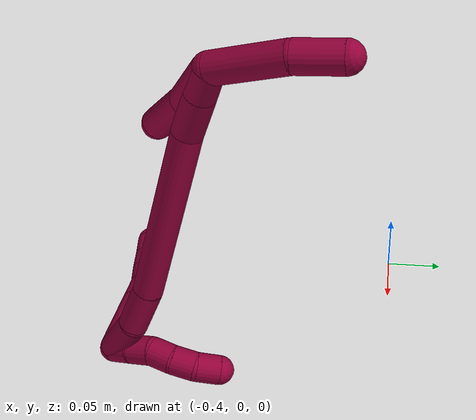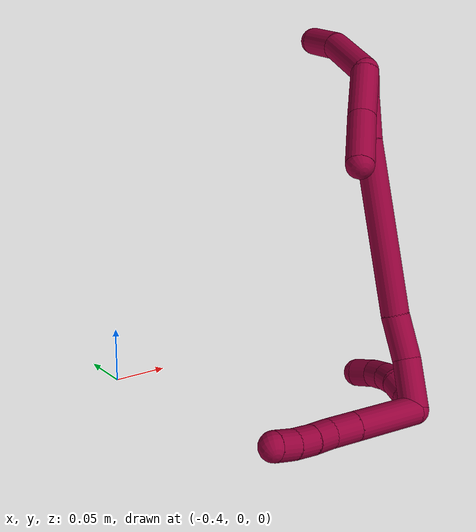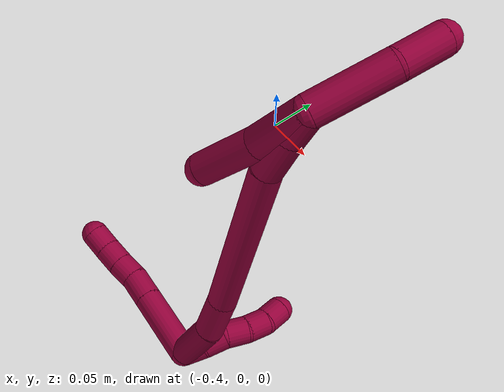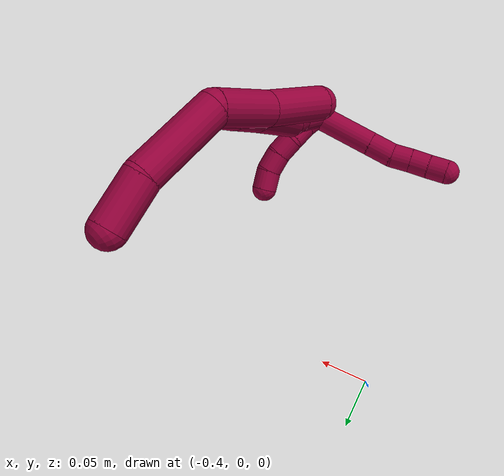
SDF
<sdf version="1.7">
 <world name="default">
  <model name="8">
   <static>0</static>
   <link name="8">
    <collision name="collision-cylinder-e_1_2_8">
     <pose>-0.025145 0.017129 0.009066 -1.08399 -0.914152 0.575828</pose>
     <geometry><cylinder><radius>0.0125</radius><length>0.063493</length></cylinder></geometry>
     <surface>
      <friction><ode><mu>1.16</mu><mu2>1.16</mu2><slip1>0</slip1><slip2>0</slip2></ode></friction>
      <contact><ode><kp>1e+06</kp><kd>1</kd><max_vel>0</max_vel><min_depth>0.001</min_depth></ode></contact>
     </surface>
    </collision>
    <visual name="visual-cylinder-e_1_2_8">
     <pose>-0.025145 0.017129 0.009066 -1.08399 -0.914152 0.575828</pose>
     <geometry><cylinder><radius>0.0125</radius><length>0.063493</length></cylinder></geometry>
     <material><ambient>0.584314 0 0.227451 1</ambient></material>
    </visual>
    <collision name="collision-cylinder-e_2_8_9">
     <pose>-0.060611 0.041288 0.021854 -1.08397 -0.914175 0.575827</pose>
     <geometry><cylinder><radius>0.0125</radius><length>0.026061</length></cylinder></geometry>
     <surface>
      <friction><ode><mu>1.16</mu><mu2>1.16</mu2><slip1>0</slip1><slip2>0</slip2></ode></friction>
      <contact><ode><kp>1e+06</kp><kd>1</kd><max_vel>0</max_vel><min_depth>0.001</min_depth></ode></contact>
     </surface>
    </collision>
    <visual name="visual-cylinder-e_2_8_9">
     <pose>-0.060611 0.041288 0.021854 -1.08397 -0.914175 0.575827</pose>
     <geometry><cylinder><radius>0.0125</radius><length>0.026061</length></cylinder></geometry>
     <material><ambient>0.584314 0 0.227451 1</ambient></material>
    </visual>
    <collision name="collision-cylinder-e_3_9_10">
     <pose>-0.077574 0.054474 0.029921 -0.956049 -0.722497 0.386619</pose>
     <geometry><cylinder><radius>0.0125</radius><length>0.020088</length></cylinder></geometry>
     <surface>
      <friction><ode><mu>1.16</mu><mu2>1.16</mu2><slip1>0</slip1><slip2>0</slip2></ode></friction>
      <contact><ode><kp>1e+06</kp><kd>1</kd><max_vel>0</max_vel><min_depth>0.001</min_depth></ode></contact>
     </surface>
    </collision>
    <visual name="visual-cylinder-e_3_9_10">
     <pose>-0.077574 0.054474 0.029921 -0.956049 -0.722497 0.386619</pose>
     <geometry><cylinder><radius>0.0125</radius><length>0.020088</length></cylinder></geometry>
     <material><ambient>0.584314 0 0.227451 1</ambient></material>
    </visual>
    <collision name="collision-cylinder-e_4_10_11">
     <pose>-0.091009 0.067097 0.038003 -1.047 -0.738006 0.43924</pose>
     <geometry><cylinder><radius>0.0125</radius><length>0.020195</length></cylinder></geometry>
     <surface>
      <friction><ode><mu>1.16</mu><mu2>1.16</mu2><slip1>0</slip1><slip2>0</slip2></ode></friction>
      <contact><ode><kp>1e+06</kp><kd>1</kd><max_vel>0</max_vel><min_depth>0.001</min_depth></ode></contact>
     </surface>
    </collision>
    <visual name="visual-cylinder-e_4_10_11">
     <pose>-0.091009 0.067097 0.038003 -1.047 -0.738006 0.43924</pose>
     <geometry><cylinder><radius>0.0125</radius><length>0.020195</length></cylinder></geometry>
     <material><ambient>0.584314 0 0.227451 1</ambient></material>
    </visual>
    <collision name="collision-cylinder-e_5_11_6">
     <pose>-0.103946 0.080873 0.044981 -1.15323 -0.655245 0.435067</pose>
     <geometry><cylinder><radius>0.0125</radius><length>0.020162</length></cylinder></geometry>
     <surface>
      <friction><ode><mu>1.16</mu><mu2>1.16</mu2><slip1>0</slip1><slip2>0</slip2></ode></friction>
      <contact><ode><kp>1e+06</kp><kd>1</kd><max_vel>0</max_vel><min_depth>0.001</min_depth></ode></contact>
     </surface>
    </collision>
    <visual name="visual-cylinder-e_5_11_6">
     <pose>-0.103946 0.080873 0.044981 -1.15323 -0.655245 0.435067</pose>
     <geometry><cylinder><radius>0.0125</radius><length>0.020162</length></cylinder></geometry>
     <material><ambient>0.584314 0 0.227451 1</ambient></material>
    </visual>
    <collision name="collision-cylinder-e_1_2_12">
     <pose>-0.00025 -0.000641 -0.009976 3.07739 -0.025003 -0.74254</pose>
     <geometry><cylinder><radius>0.0125</radius><length>0.02</length></cylinder></geometry>
     <surface>
      <friction><ode><mu>1.16</mu><mu2>1.16</mu2><slip1>0</slip1><slip2>0</slip2></ode></friction>
      <contact><ode><kp>1e+06</kp><kd>1</kd><max_vel>0</max_vel><min_depth>0.001</min_depth></ode></contact>
     </surface>
    </collision>
    <visual name="visual-cylinder-e_1_2_12">
     <pose>-0.00025 -0.000641 -0.009976 3.07739 -0.025003 -0.74254</pose>
     <geometry><cylinder><radius>0.0125</radius><length>0.02</length></cylinder></geometry>
     <material><ambient>0.584314 0 0.227451 1</ambient></material>
    </visual>
    <collision name="collision-cylinder-e_2_12_13">
     <pose>-0.002187 -0.002139 -0.029772 3.05459 -0.169527 -2.19472</pose>
     <geometry><cylinder><radius>0.0125</radius><length>0.02</length></cylinder></geometry>
     <surface>
      <friction><ode><mu>1.16</mu><mu2>1.16</mu2><slip1>0</slip1><slip2>0</slip2></ode></friction>
      <contact><ode><kp>1e+06</kp><kd>1</kd><max_vel>0</max_vel><min_depth>0.001</min_depth></ode></contact>
     </surface>
    </collision>
    <visual name="visual-cylinder-e_2_12_13">
     <pose>-0.002187 -0.002139 -0.029772 3.05459 -0.169527 -2.19472</pose>
     <geometry><cylinder><radius>0.0125</radius><length>0.02</length></cylinder></geometry>
     <material><ambient>0.584314 0 0.227451 1</ambient></material>
    </visual>
    <collision name="collision-cylinder-e_3_13_14">
     <pose>-0.006522 -0.006863 -0.048425 2.72894 -0.26798 -1.14433</pose>
     <geometry><cylinder><radius>0.0125</radius><length>0.02</length></cylinder></geometry>
     <surface>
      <friction><ode><mu>1.16</mu><mu2>1.16</mu2><slip1>0</slip1><slip2>0</slip2></ode></friction>
      <contact><ode><kp>1e+06</kp><kd>1</kd><max_vel>0</max_vel><min_depth>0.001</min_depth></ode></contact>
     </surface>
    </collision>
    <visual name="visual-cylinder-e_3_13_14">
     <pose>-0.006522 -0.006863 -0.048425 2.72894 -0.26798 -1.14433</pose>
     <geometry><cylinder><radius>0.0125</radius><length>0.02</length></cylinder></geometry>
     <material><ambient>0.584314 0 0.227451 1</ambient></material>
    </visual>
    <collision name="collision-cylinder-e_4_14_15">
     <pose>-0.013714 -0.014118 -0.065497 2.75147 -0.471673 -1.76536</pose>
     <geometry><cylinder><radius>0.0125</radius><length>0.02</length></cylinder></geometry>
     <surface>
      <friction><ode><mu>1.16</mu><mu2>1.16</mu2><slip1>0</slip1><slip2>0</slip2></ode></friction>
      <contact><ode><kp>1e+06</kp><kd>1</kd><max_vel>0</max_vel><min_depth>0.001</min_depth></ode></contact>
     </surface>
    </collision>
    <visual name="visual-cylinder-e_4_14_15">
     <pose>-0.013714 -0.014118 -0.065497 2.75147 -0.471673 -1.76536</pose>
     <geometry><cylinder><radius>0.0125</radius><length>0.02</length></cylinder></geometry>
     <material><ambient>0.584314 0 0.227451 1</ambient></material>
    </visual>
    <collision name="collision-cylinder-e_5_15_5">
     <pose>-0.025111 -0.019692 -0.080683 2.83677 -0.755041 -2.40246</pose>
     <geometry><cylinder><radius>0.0125</radius><length>0.02</length></cylinder></geometry>
     <surface>
      <friction><ode><mu>1.16</mu><mu2>1.16</mu2><slip1>0</slip1><slip2>0</slip2></ode></friction>
      <contact><ode><kp>1e+06</kp><kd>1</kd><max_vel>0</max_vel><min_depth>0.001</min_depth></ode></contact>
     </surface>
    </collision>
    <visual name="visual-cylinder-e_5_15_5">
     <pose>-0.025111 -0.019692 -0.080683 2.83677 -0.755041 -2.40246</pose>
     <geometry><cylinder><radius>0.0125</radius><length>0.02</length></cylinder></geometry>
     <material><ambient>0.584314 0 0.227451 1</ambient></material>
    </visual>
    <collision name="collision-cylinder-e_1_2_16">
     <pose>0.006627 0.01101 -0.017686 -2.58477 0.307974 -0.99495</pose>
     <geometry><cylinder><radius>0.0125</radius><length>0.043723</length></cylinder></geometry>
     <surface>
      <friction><ode><mu>1.16</mu><mu2>1.16</mu2><slip1>0</slip1><slip2>0</slip2></ode></friction>
      <contact><ode><kp>1e+06</kp><kd>1</kd><max_vel>0</max_vel><min_depth>0.001</min_depth></ode></contact>
     </surface>
    </collision>
    <visual name="visual-cylinder-e_1_2_16">
     <pose>0.006627 0.01101 -0.017686 -2.58477 0.307974 -0.99495</pose>
     <geometry><cylinder><radius>0.0125</radius><length>0.043723</length></cylinder></geometry>
     <material><ambient>0.584314 0 0.227451 1</ambient></material>
    </visual>
    <collision name="collision-cylinder-e_2_16_17">
     <pose>0.017277 0.036488 -0.048414 -2.30441 0.203659 -0.451538</pose>
     <geometry><cylinder><radius>0.0125</radius><length>0.039779</length></cylinder></geometry>
     <surface>
      <friction><ode><mu>1.16</mu><mu2>1.16</mu2><slip1>0</slip1><slip2>0</slip2></ode></friction>
      <contact><ode><kp>1e+06</kp><kd>1</kd><max_vel>0</max_vel><min_depth>0.001</min_depth></ode></contact>
     </surface>
    </collision>
    <visual name="visual-cylinder-e_2_16_17">
     <pose>0.017277 0.036488 -0.048414 -2.30441 0.203659 -0.451538</pose>
     <geometry><cylinder><radius>0.0125</radius><length>0.039779</length></cylinder></geometry>
     <material><ambient>0.584314 0 0.227451 1</ambient></material>
    </visual>
    <collision name="collision-cylinder-e_3_17_18">
     <pose>0.043703 0.109889 -0.105154 -2.20883 0.296378 -0.576554</pose>
     <geometry><cylinder><radius>0.0125</radius><length>0.153423</length></cylinder></geometry>
     <surface>
      <friction><ode><mu>1.16</mu><mu2>1.16</mu2><slip1>0</slip1><slip2>0</slip2></ode></friction>
      <contact><ode><kp>1e+06</kp><kd>1</kd><max_vel>0</max_vel><min_depth>0.001</min_depth></ode></contact>
     </surface>
    </collision>
    <visual name="visual-cylinder-e_3_17_18">
     <pose>0.043703 0.109889 -0.105154 -2.20883 0.296378 -0.576554</pose>
     <geometry><cylinder><radius>0.0125</radius><length>0.153423</length></cylinder></geometry>
     <material><ambient>0.584314 0 0.227451 1</ambient></material>
    </visual>
    <collision name="collision-cylinder-e_4_18_19">
     <pose>0.073211 0.180641 -0.161466 -2.38867 0.389932 -0.926558</pose>
     <geometry><cylinder><radius>0.0125</radius><length>0.037375</length></cylinder></geometry>
     <surface>
      <friction><ode><mu>1.16</mu><mu2>1.16</mu2><slip1>0</slip1><slip2>0</slip2></ode></friction>
      <contact><ode><kp>1e+06</kp><kd>1</kd><max_vel>0</max_vel><min_depth>0.001</min_depth></ode></contact>
     </surface>
    </collision>
    <visual name="visual-cylinder-e_4_18_19">
     <pose>0.073211 0.180641 -0.161466 -2.38867 0.389932 -0.926558</pose>
     <geometry><cylinder><radius>0.0125</radius><length>0.037375</length></cylinder></geometry>
     <material><ambient>0.584314 0 0.227451 1</ambient></material>
    </visual>
    <collision name="collision-cylinder-e_5_19_1">
     <pose>0.085726 0.200159 -0.182828 -2.41998 0.434633 -1.05891</pose>
     <geometry><cylinder><radius>0.0125</radius><length>0.0257</length></cylinder></geometry>
     <surface>
      <friction><ode><mu>1.16</mu><mu2>1.16</mu2><slip1>0</slip1><slip2>0</slip2></ode></friction>
      <contact><ode><kp>1e+06</kp><kd>1</kd><max_vel>0</max_vel><min_depth>0.001</min_depth></ode></contact>
     </surface>
    </collision>
    <visual name="visual-cylinder-e_5_19_1">
     <pose>0.085726 0.200159 -0.182828 -2.41998 0.434633 -1.05891</pose>
     <geometry><cylinder><radius>0.0125</radius><length>0.0257</length></cylinder></geometry>
     <material><ambient>0.584314 0 0.227451 1</ambient></material>
    </visual>
    <collision name="collision-cylinder-e_1_1_20">
     <pose>0.087051 0.207998 -0.222774 -3.13711 -0.130232 3.07292</pose>
     <geometry><cylinder><radius>0.0125</radius><length>0.062925</length></cylinder></geometry>
     <surface>
      <friction><ode><mu>1.16</mu><mu2>1.16</mu2><slip1>0</slip1><slip2>0</slip2></ode></friction>
      <contact><ode><kp>1e+06</kp><kd>1</kd><max_vel>0</max_vel><min_depth>0.001</min_depth></ode></contact>
     </surface>
    </collision>
    <visual name="visual-cylinder-e_1_1_20">
     <pose>0.087051 0.207998 -0.222774 -3.13711 -0.130232 3.07292</pose>
     <geometry><cylinder><radius>0.0125</radius><length>0.062925</length></cylinder></geometry>
     <material><ambient>0.584314 0 0.227451 1</ambient></material>
    </visual>
    <collision name="collision-cylinder-e_2_20_4">
     <pose>0.076055 0.206258 -0.271069 3.03208 -0.381963 -2.5891</pose>
     <geometry><cylinder><radius>0.0125</radius><length>0.037075</length></cylinder></geometry>
     <surface>
      <friction><ode><mu>1.16</mu><mu2>1.16</mu2><slip1>0</slip1><slip2>0</slip2></ode></friction>
      <contact><ode><kp>1e+06</kp><kd>1</kd><max_vel>0</max_vel><min_depth>0.001</min_depth></ode></contact>
     </surface>
    </collision>
    <visual name="visual-cylinder-e_2_20_4">
     <pose>0.076055 0.206258 -0.271069 3.03208 -0.381963 -2.5891</pose>
     <geometry><cylinder><radius>0.0125</radius><length>0.037075</length></cylinder></geometry>
     <material><ambient>0.584314 0 0.227451 1</ambient></material>
    </visual>
    <collision name="collision-cylinder-e_1_1_21">
     <pose>0.080037 0.199937 -0.171504 0.375858 -0.475035 -0.092012</pose>
     <geometry><cylinder><radius>0.0125</radius><length>0.048535</length></cylinder></geometry>
     <surface>
      <friction><ode><mu>1.16</mu><mu2>1.16</mu2><slip1>0</slip1><slip2>0</slip2></ode></friction>
      <contact><ode><kp>1e+06</kp><kd>1</kd><max_vel>0</max_vel><min_depth>0.001</min_depth></ode></contact>
     </surface>
    </collision>
    <visual name="visual-cylinder-e_1_1_21">
     <pose>0.080037 0.199937 -0.171504 0.375858 -0.475035 -0.092012</pose>
     <geometry><cylinder><radius>0.0125</radius><length>0.048535</length></cylinder></geometry>
     <material><ambient>0.584314 0 0.227451 1</ambient></material>
    </visual>
    <collision name="collision-cylinder-e_2_21_3">
     <pose>0.058428 0.186538 -0.12859 0.235365 -0.42072 -0.050477</pose>
     <geometry><cylinder><radius>0.0125</radius><length>0.051465</length></cylinder></geometry>
     <surface>
      <friction><ode><mu>1.16</mu><mu2>1.16</mu2><slip1>0</slip1><slip2>0</slip2></ode></friction>
      <contact><ode><kp>1e+06</kp><kd>1</kd><max_vel>0</max_vel><min_depth>0.001</min_depth></ode></contact>
     </surface>
    </collision>
    <visual name="visual-cylinder-e_2_21_3">
     <pose>0.058428 0.186538 -0.12859 0.235365 -0.42072 -0.050477</pose>
     <geometry><cylinder><radius>0.0125</radius><length>0.051465</length></cylinder></geometry>
     <material><ambient>0.584314 0 0.227451 1</ambient></material>
    </visual>
    <collision name="collision-sphere-3">
     <pose>0.047919 0.18106 -0.105749 0 -0 0</pose>
     <geometry><sphere><radius>0.0125</radius></sphere></geometry>
     <surface>
      <friction><ode><mu>1.16</mu><mu2>1.16</mu2><slip1>0</slip1><slip2>0</slip2></ode></friction>
      <contact><ode><kp>1e+06</kp><kd>1</kd><max_vel>0</max_vel><min_depth>0.001</min_depth></ode></contact>
     </surface>
    </collision>
    <visual name="visual-sphere-3">
     <pose>0.047919 0.18106 -0.105749 0 -0 0</pose>
     <geometry><sphere><radius>0.0125</radius></sphere></geometry>
     <material><ambient>0.584314 0 0.227451 1</ambient></material>
    </visual>
    <collision name="collision-sphere-21">
     <pose>0.068938 0.192015 -0.15143 0 -0 0</pose>
     <geometry><sphere><radius>0.0125</radius></sphere></geometry>
     <surface>
      <friction><ode><mu>1.16</mu><mu2>1.16</mu2><slip1>0</slip1><slip2>0</slip2></ode></friction>
      <contact><ode><kp>1e+06</kp><kd>1</kd><max_vel>0</max_vel><min_depth>0.001</min_depth></ode></contact>
     </surface>
    </collision>
    <visual name="visual-sphere-21">
     <pose>0.068938 0.192015 -0.15143 0 -0 0</pose>
     <geometry><sphere><radius>0.0125</radius></sphere></geometry>
     <material><ambient>0.584314 0 0.227451 1</ambient></material>
    </visual>
    <collision name="collision-sphere-4">
     <pose>0.069145 0.204378 -0.288167 0 -0 0</pose>
     <geometry><sphere><radius>0.0125</radius></sphere></geometry>
     <surface>
      <friction><ode><mu>1.16</mu><mu2>1.16</mu2><slip1>0</slip1><slip2>0</slip2></ode></friction>
      <contact><ode><kp>1e+06</kp><kd>1</kd><max_vel>0</max_vel><min_depth>0.001</min_depth></ode></contact>
     </surface>
    </collision>
    <visual name="visual-sphere-4">
     <pose>0.069145 0.204378 -0.288167 0 -0 0</pose>
     <geometry><sphere><radius>0.0125</radius></sphere></geometry>
     <material><ambient>0.584314 0 0.227451 1</ambient></material>
    </visual>
    <collision name="collision-sphere-20">
     <pose>0.082965 0.208138 -0.25397 0 -0 0</pose>
     <geometry><sphere><radius>0.0125</radius></sphere></geometry>
     <surface>
      <friction><ode><mu>1.16</mu><mu2>1.16</mu2><slip1>0</slip1><slip2>0</slip2></ode></friction>
      <contact><ode><kp>1e+06</kp><kd>1</kd><max_vel>0</max_vel><min_depth>0.001</min_depth></ode></contact>
     </surface>
    </collision>
    <visual name="visual-sphere-20">
     <pose>0.082965 0.208138 -0.25397 0 -0 0</pose>
     <geometry><sphere><radius>0.0125</radius></sphere></geometry>
     <material><ambient>0.584314 0 0.227451 1</ambient></material>
    </visual>
    <collision name="collision-sphere-6">
     <pose>-0.110089 0.088179 0.048222 0 -0 0</pose>
     <geometry><sphere><radius>0.0125</radius></sphere></geometry>
     <surface>
      <friction><ode><mu>1.16</mu><mu2>1.16</mu2><slip1>0</slip1><slip2>0</slip2></ode></friction>
      <contact><ode><kp>1e+06</kp><kd>1</kd><max_vel>0</max_vel><min_depth>0.001</min_depth></ode></contact>
     </surface>
    </collision>
    <visual name="visual-sphere-6">
     <pose>-0.110089 0.088179 0.048222 0 -0 0</pose>
     <geometry><sphere><radius>0.0125</radius></sphere></geometry>
     <material><ambient>0.584314 0 0.227451 1</ambient></material>
    </visual>
    <collision name="collision-sphere-11">
     <pose>-0.097803 0.073566 0.041739 0 -0 0</pose>
     <geometry><sphere><radius>0.0125</radius></sphere></geometry>
     <surface>
      <friction><ode><mu>1.16</mu><mu2>1.16</mu2><slip1>0</slip1><slip2>0</slip2></ode></friction>
      <contact><ode><kp>1e+06</kp><kd>1</kd><max_vel>0</max_vel><min_depth>0.001</min_depth></ode></contact>
     </surface>
    </collision>
    <visual name="visual-sphere-11">
     <pose>-0.097803 0.073566 0.041739 0 -0 0</pose>
     <geometry><sphere><radius>0.0125</radius></sphere></geometry>
     <material><ambient>0.584314 0 0.227451 1</ambient></material>
    </visual>
    <collision name="collision-sphere-10">
     <pose>-0.084215 0.060629 0.034266 0 -0 0</pose>
     <geometry><sphere><radius>0.0125</radius></sphere></geometry>
     <surface>
      <friction><ode><mu>1.16</mu><mu2>1.16</mu2><slip1>0</slip1><slip2>0</slip2></ode></friction>
      <contact><ode><kp>1e+06</kp><kd>1</kd><max_vel>0</max_vel><min_depth>0.001</min_depth></ode></contact>
     </surface>
    </collision>
    <visual name="visual-sphere-10">
     <pose>-0.084215 0.060629 0.034266 0 -0 0</pose>
     <geometry><sphere><radius>0.0125</radius></sphere></geometry>
     <material><ambient>0.584314 0 0.227451 1</ambient></material>
    </visual>
    <collision name="collision-sphere-9">
     <pose>-0.070932 0.048318 0.025575 0 -0 0</pose>
     <geometry><sphere><radius>0.0125</radius></sphere></geometry>
     <surface>
      <friction><ode><mu>1.16</mu><mu2>1.16</mu2><slip1>0</slip1><slip2>0</slip2></ode></friction>
      <contact><ode><kp>1e+06</kp><kd>1</kd><max_vel>0</max_vel><min_depth>0.001</min_depth></ode></contact>
     </surface>
    </collision>
    <visual name="visual-sphere-9">
     <pose>-0.070932 0.048318 0.025575 0 -0 0</pose>
     <geometry><sphere><radius>0.0125</radius></sphere></geometry>
     <material><ambient>0.584314 0 0.227451 1</ambient></material>
    </visual>
    <collision name="collision-sphere-2">
     <geometry><sphere><radius>0.0125</radius></sphere></geometry>
     <surface>
      <friction><ode><mu>1.16</mu><mu2>1.16</mu2><slip1>0</slip1><slip2>0</slip2></ode></friction>
      <contact><ode><kp>1e+06</kp><kd>1</kd><max_vel>0</max_vel><min_depth>0.001</min_depth></ode></contact>
     </surface>
    </collision>
    <visual name="visual-sphere-2">
     <geometry><sphere><radius>0.0125</radius></sphere></geometry>
     <material><ambient>0.584314 0 0.227451 1</ambient></material>
    </visual>
    <collision name="collision-sphere-19">
     <pose>0.080315 0.192459 -0.174078 0 -0 0</pose>
     <geometry><sphere><radius>0.0125</radius></sphere></geometry>
     <surface>
      <friction><ode><mu>1.16</mu><mu2>1.16</mu2><slip1>0</slip1><slip2>0</slip2></ode></friction>
      <contact><ode><kp>1e+06</kp><kd>1</kd><max_vel>0</max_vel><min_depth>0.001</min_depth></ode></contact>
     </surface>
    </collision>
    <visual name="visual-sphere-19">
     <pose>0.080315 0.192459 -0.174078 0 -0 0</pose>
     <geometry><sphere><radius>0.0125</radius></sphere></geometry>
     <material><ambient>0.584314 0 0.227451 1</ambient></material>
    </visual>
    <collision name="collision-sphere-8">
     <pose>-0.05029 0.034258 0.018132 0 -0 0</pose>
     <geometry><sphere><radius>0.0125</radius></sphere></geometry>
     <surface>
      <friction><ode><mu>1.16</mu><mu2>1.16</mu2><slip1>0</slip1><slip2>0</slip2></ode></friction>
      <contact><ode><kp>1e+06</kp><kd>1</kd><max_vel>0</max_vel><min_depth>0.001</min_depth></ode></contact>
     </surface>
    </collision>
    <visual name="visual-sphere-8">
     <pose>-0.05029 0.034258 0.018132 0 -0 0</pose>
     <geometry><sphere><radius>0.0125</radius></sphere></geometry>
     <material><ambient>0.584314 0 0.227451 1</ambient></material>
    </visual>
    <collision name="collision-sphere-12">
     <pose>-0.0005 -0.001283 -0.019953 0 -0 0</pose>
     <geometry><sphere><radius>0.0125</radius></sphere></geometry>
     <surface>
      <friction><ode><mu>1.16</mu><mu2>1.16</mu2><slip1>0</slip1><slip2>0</slip2></ode></friction>
      <contact><ode><kp>1e+06</kp><kd>1</kd><max_vel>0</max_vel><min_depth>0.001</min_depth></ode></contact>
     </surface>
    </collision>
    <visual name="visual-sphere-12">
     <pose>-0.0005 -0.001283 -0.019953 0 -0 0</pose>
     <geometry><sphere><radius>0.0125</radius></sphere></geometry>
     <material><ambient>0.584314 0 0.227451 1</ambient></material>
    </visual>
    <collision name="collision-sphere-13">
     <pose>-0.003874 -0.002996 -0.039591 0 -0 0</pose>
     <geometry><sphere><radius>0.0125</radius></sphere></geometry>
     <surface>
      <friction><ode><mu>1.16</mu><mu2>1.16</mu2><slip1>0</slip1><slip2>0</slip2></ode></friction>
      <contact><ode><kp>1e+06</kp><kd>1</kd><max_vel>0</max_vel><min_depth>0.001</min_depth></ode></contact>
     </surface>
    </collision>
    <visual name="visual-sphere-13">
     <pose>-0.003874 -0.002996 -0.039591 0 -0 0</pose>
     <geometry><sphere><radius>0.0125</radius></sphere></geometry>
     <material><ambient>0.584314 0 0.227451 1</ambient></material>
    </visual>
    <collision name="collision-sphere-14">
     <pose>-0.00917 -0.01073 -0.057259 0 -0 0</pose>
     <geometry><sphere><radius>0.0125</radius></sphere></geometry>
     <surface>
      <friction><ode><mu>1.16</mu><mu2>1.16</mu2><slip1>0</slip1><slip2>0</slip2></ode></friction>
      <contact><ode><kp>1e+06</kp><kd>1</kd><max_vel>0</max_vel><min_depth>0.001</min_depth></ode></contact>
     </surface>
    </collision>
    <visual name="visual-sphere-14">
     <pose>-0.00917 -0.01073 -0.057259 0 -0 0</pose>
     <geometry><sphere><radius>0.0125</radius></sphere></geometry>
     <material><ambient>0.584314 0 0.227451 1</ambient></material>
    </visual>
    <collision name="collision-sphere-15">
     <pose>-0.018258 -0.017506 -0.073736 0 -0 0</pose>
     <geometry><sphere><radius>0.0125</radius></sphere></geometry>
     <surface>
      <friction><ode><mu>1.16</mu><mu2>1.16</mu2><slip1>0</slip1><slip2>0</slip2></ode></friction>
      <contact><ode><kp>1e+06</kp><kd>1</kd><max_vel>0</max_vel><min_depth>0.001</min_depth></ode></contact>
     </surface>
    </collision>
    <visual name="visual-sphere-15">
     <pose>-0.018258 -0.017506 -0.073736 0 -0 0</pose>
     <geometry><sphere><radius>0.0125</radius></sphere></geometry>
     <material><ambient>0.584314 0 0.227451 1</ambient></material>
    </visual>
    <collision name="collision-sphere-5">
     <pose>-0.031964 -0.021877 -0.087629 0 -0 0</pose>
     <geometry><sphere><radius>0.0125</radius></sphere></geometry>
     <surface>
      <friction><ode><mu>1.16</mu><mu2>1.16</mu2><slip1>0</slip1><slip2>0</slip2></ode></friction>
      <contact><ode><kp>1e+06</kp><kd>1</kd><max_vel>0</max_vel><min_depth>0.001</min_depth></ode></contact>
     </surface>
    </collision>
    <visual name="visual-sphere-5">
     <pose>-0.031964 -0.021877 -0.087629 0 -0 0</pose>
     <geometry><sphere><radius>0.0125</radius></sphere></geometry>
     <material><ambient>0.584314 0 0.227451 1</ambient></material>
    </visual>
    <collision name="collision-sphere-16">
     <pose>0.013254 0.02202 -0.035372 0 -0 0</pose>
     <geometry><sphere><radius>0.0125</radius></sphere></geometry>
     <surface>
      <friction><ode><mu>1.16</mu><mu2>1.16</mu2><slip1>0</slip1><slip2>0</slip2></ode></friction>
      <contact><ode><kp>1e+06</kp><kd>1</kd><max_vel>0</max_vel><min_depth>0.001</min_depth></ode></contact>
     </surface>
    </collision>
    <visual name="visual-sphere-16">
     <pose>0.013254 0.02202 -0.035372 0 -0 0</pose>
     <geometry><sphere><radius>0.0125</radius></sphere></geometry>
     <material><ambient>0.584314 0 0.227451 1</ambient></material>
    </visual>
    <collision name="collision-sphere-17">
     <pose>0.021299 0.050956 -0.061456 0 -0 0</pose>
     <geometry><sphere><radius>0.0125</radius></sphere></geometry>
     <surface>
      <friction><ode><mu>1.16</mu><mu2>1.16</mu2><slip1>0</slip1><slip2>0</slip2></ode></friction>
      <contact><ode><kp>1e+06</kp><kd>1</kd><max_vel>0</max_vel><min_depth>0.001</min_depth></ode></contact>
     </surface>
    </collision>
    <visual name="visual-sphere-17">
     <pose>0.021299 0.050956 -0.061456 0 -0 0</pose>
     <geometry><sphere><radius>0.0125</radius></sphere></geometry>
     <material><ambient>0.584314 0 0.227451 1</ambient></material>
    </visual>
    <collision name="collision-sphere-18">
     <pose>0.066108 0.168822 -0.148853 0 -0 0</pose>
     <geometry><sphere><radius>0.0125</radius></sphere></geometry>
     <surface>
      <friction><ode><mu>1.16</mu><mu2>1.16</mu2><slip1>0</slip1><slip2>0</slip2></ode></friction>
      <contact><ode><kp>1e+06</kp><kd>1</kd><max_vel>0</max_vel><min_depth>0.001</min_depth></ode></contact>
     </surface>
    </collision>
    <visual name="visual-sphere-18">
     <pose>0.066108 0.168822 -0.148853 0 -0 0</pose>
     <geometry><sphere><radius>0.0125</radius></sphere></geometry>
     <material><ambient>0.584314 0 0.227451 1</ambient></material>
    </visual>
    <collision name="collision-sphere-1">
     <pose>0.091136 0.207858 -0.191579 0 -0 0</pose>
     <geometry><sphere><radius>0.0125</radius></sphere></geometry>
     <surface>
      <friction><ode><mu>1.16</mu><mu2>1.16</mu2><slip1>0</slip1><slip2>0</slip2></ode></friction>
      <contact><ode><kp>1e+06</kp><kd>1</kd><max_vel>0</max_vel><min_depth>0.001</min_depth></ode></contact>
     </surface>
    </collision>
    <visual name="visual-sphere-1">
     <pose>0.091136 0.207858 -0.191579 0 -0 0</pose>
     <geometry><sphere><radius>0.0125</radius></sphere></geometry>
     <material><ambient>0.584314 0 0.227451 1</ambient></material>
    </visual>
    <inertial>
     <pose>0.024249 0.101469 -0.093123 0 -0 0</pose>
     <mass>0.75</mass>
     <inertia>
      <ixx>8.9e-05</ixx>
      <ixy>0</ixy>
      <ixz>0</ixz>
      <iyy>-0.000201</iyy>
      <iyz>0</iyz>
      <izz>-0.000333</izz>
     </inertia>
    </inertial>
   </link>
   <pose>-0.238662 -0.233829 0.012512 1.97535 -0.451825 -0.565884</pose>
  </model>
 </world>
</sdf>
